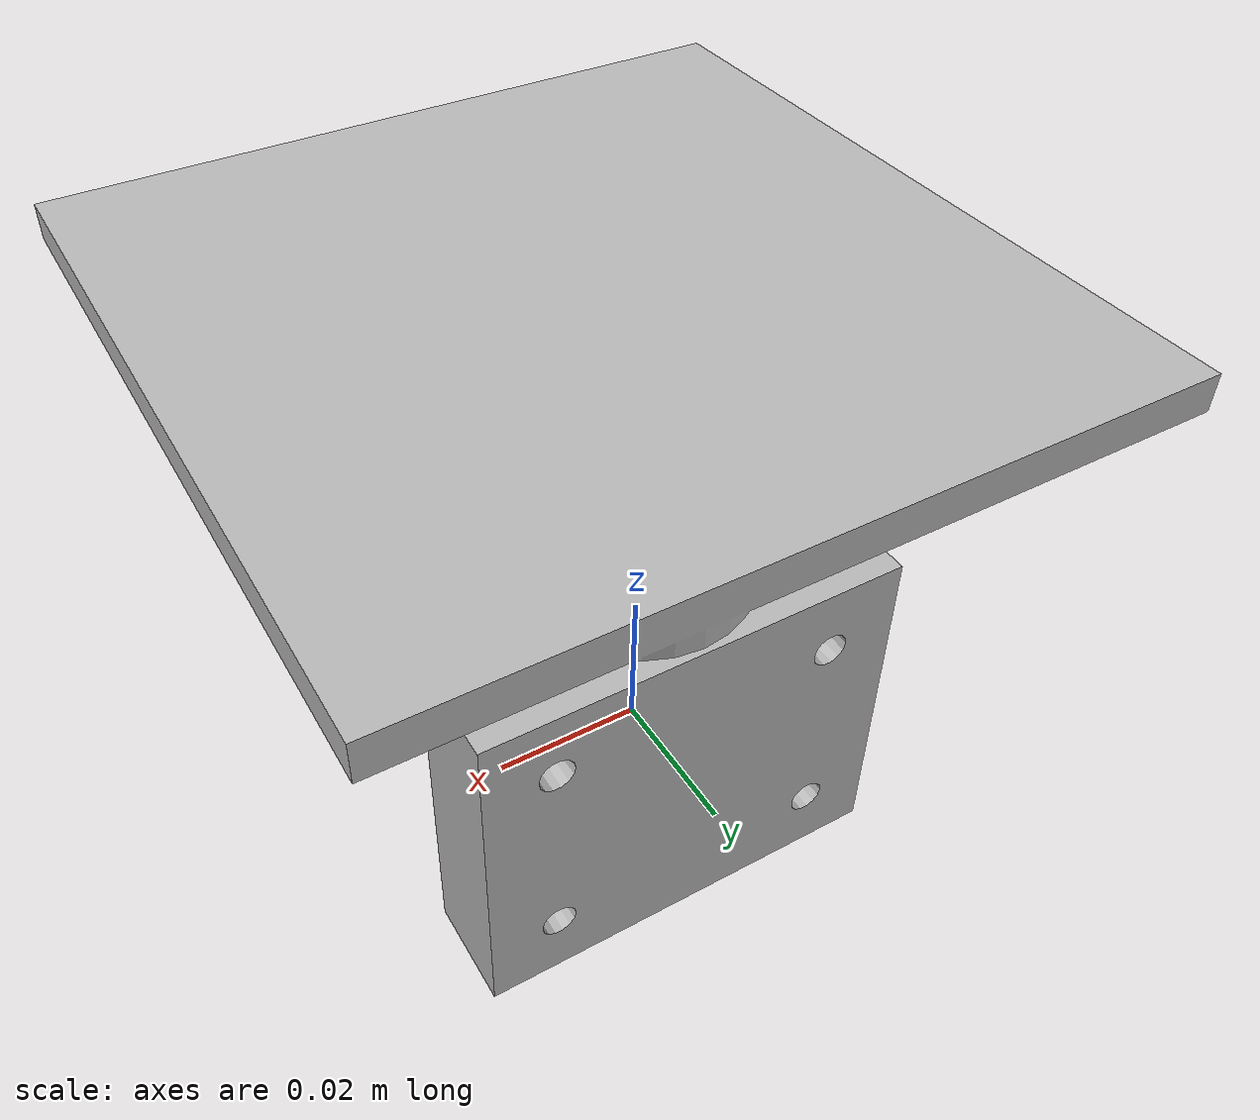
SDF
<?xml version='1.0'?>
<sdf version='1.7'>
  <model name='SolarPanel'>

    <link name="solar_panel_base_link">

      <gravity>0</gravity>
      <visual name="visual">
        <geometry>
          <mesh>
            <uri>supportSolarPanel.dae</uri>
            <scale>1 1 1</scale>
          </mesh>
        </geometry>
      </visual>
    </link>

    <link name='solar_panel'>
      <inertial>
        <inertia>
          <ixx>0.01</ixx>
          <ixy>0</ixy>
          <ixz>0</ixz>
          <iyy>0.01</iyy>
          <iyz>0</iyz>
          <izz>0.01</izz>
        </inertia>
      </inertial>
      <pose>0 0 0.055 0 0 3.141592</pose>
      <visual name='visual'>
        <pose>0 0 0 0 0 0</pose>
        <geometry>
          <mesh>
            <uri>solarPanelTextured.dae</uri>
            <scale>1 1 1</scale>
          </mesh>
        </geometry>
        <material>
          <lighting>1</lighting>
          <script>
            <uri>materials/scripts</uri>
            <uri>materials/textures</uri>
            <name>solarPanelMat/Diffuse</name>
            <name>Gazebo/Grey</name>
          </script>
          <shader type='pixel'/>
        </material>
        <transparency>0</transparency>
        <cast_shadows>1</cast_shadows>
      </visual>
      <collision name='collision'>
        <laser_retro>0</laser_retro>
        <max_contacts>10</max_contacts>
        <pose>0 0 0 0 -0 0</pose>
        <geometry>
          <mesh>
            <uri>solarPanelTextured.dae</uri>
            <scale>1 1 1</scale>
          </mesh>
        </geometry>
        <surface>
          <friction>
            <ode>
              <mu>1</mu>
              <mu2>1</mu2>
              <fdir1>0 0 0</fdir1>
              <slip1>0</slip1>
              <slip2>0</slip2>
            </ode>
            <torsional>
              <coefficient>1</coefficient>
              <patch_radius>0</patch_radius>
              <surface_radius>0</surface_radius>
              <use_patch_radius>1</use_patch_radius>
              <ode>
                <slip>0</slip>
              </ode>
            </torsional>
          </friction>
          <bounce>
            <restitution_coefficient>0</restitution_coefficient>
            <threshold>1e+06</threshold>
          </bounce>
          <contact>
            <collide_without_contact>0</collide_without_contact>
            <collide_without_contact_bitmask>1</collide_without_contact_bitmask>
            <collide_bitmask>1</collide_bitmask>
            <ode>
              <soft_cfm>0</soft_cfm>
              <soft_erp>0.2</soft_erp>
              <kp>1e+13</kp>
              <kd>1</kd>
              <max_vel>0.01</max_vel>
              <min_depth>0.01</min_depth>
            </ode>
            <bullet>
              <split_impulse>1</split_impulse>
              <split_impulse_penetration_threshold>-0.01</split_impulse_penetration_threshold>
              <soft_cfm>0</soft_cfm>
              <soft_erp>0.2</soft_erp>
              <kp>1e+13</kp>
              <kd>1</kd>
            </bullet>
          </contact>
        </surface>
      </collision>
    </link>
    <allow_auto_disable>1</allow_auto_disable>

    <joint name="revolution" type="revolute">
      <parent>solar_panel_base_link</parent>
      <child>solar_panel</child>
      <axis>
        <xyz>0 0 1</xyz>
         <dynamics>
            <friction>0.005</friction>
            <damping>0.001</damping>
        </dynamics>
      </axis>
      <pose>0 0 0 0 -0 0</pose>
    </joint>

    <joint name ='fix' type='fixed'>
      <parent>world</parent>
      <child>solar_panel_base_link</child>
    </joint>
  </model>
</sdf>
